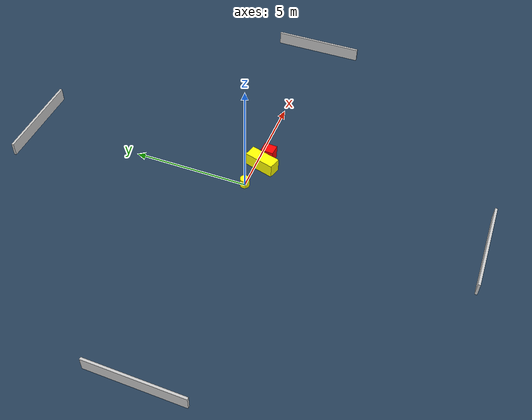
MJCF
<?xml version="1.0" ?>
<mujoco model="generated_environment">
  <option timestep="0.01" integrator="RK4" cone="elliptic"/>
  <default>
    <geom density="1"/>
  </default>
  <asset>
    <texture builtin="gradient" height="3072" name="skybox" rgb1="0.3 0.5 0.7" rgb2="0 0 0" type="skybox" width="512"/>
    <texture builtin="checker" height="300" name="groundplane" rgb1="0.2 0.3 0.4" rgb2="0.1 0.2 0.3" type="2d" width="300"/>
    <material name="groundplane" reflectance="0.2" texrepeat="5 5" texture="groundplane"/>
  </asset>
  <worldbody>
    <light dir="0 0 -1" directional="true" pos="0 0 1.5"/>
    <geom condim="3" friction="0.5 0.005 0.001" material="groundplane" name="floor" pos="0 0 0" size="0 0 0.05" type="plane"/>
    <body name="walls">
      <geom name="wall_1" condim="4" pos="-10.0 0.0 0.3" rgba="0.800000011920929 0.800000011920929 0.800000011920929 1.0" size="0.05 2.0 0.3" type="box"/>
      <geom name="wall_2" condim="4" pos="10.0 0.0 0.3" rgba="0.800000011920929 0.800000011920929 0.800000011920929 1.0" size="0.05 2.0 0.3" type="box"/>
      <geom name="wall_3" condim="4" pos="0.0 -10.0 0.3" rgba="0.800000011920929 0.800000011920929 0.800000011920929 1.0" size="2.0 0.05 0.3" type="box"/>
      <geom name="wall_4" condim="4" pos="0.0 10.0 0.3" rgba="0.800000011920929 0.800000011920929 0.800000011920929 1.0" size="2.0 0.05 0.3" type="box"/>
    </body>
    <body name="robot">
      <joint name="joint_x" type="slide" pos="0 0 0" axis="1 0 0"/>
      <joint name="joint_y" type="slide" pos="0 0 0" axis="0 1 0"/>
      <geom name="robot" type="cylinder" pos="0.0 0.0 0.2" size="0.2 0.2 0.0" mass="5.0" friction="1.0 0.005 0.0001" condim="4" rgba="1.0 1.0 0.0 1.0"/>
    </body>
    <body name="obstacle_1_movable">
      <geom name="obstacle_1_movable" condim="4" pos="1.2849512118454534 -0.2923257568584586 0.3" euler="0 0 344.29438353277726" friction="0.0 0.005 0.001" rgba="1.0 1.0 0.0 1.0" size="0.2721435971494145 0.6620526897393959 0.3" type="box" mass="0.1"/>
      <joint type="free"/>
    </body>
    <body name="obstacle_2_static">
      <geom name="obstacle_2_static" condim="4" pos="1.882820724423118 -0.3749203415437806 0.3" euler="0 0 356.63490496578163" friction="0.0 0.005 0.001" rgba="1.0 0.0 0.0 1.0" size="0.24299049833336067 0.27546783583735135 0.3" type="box"/>
    </body>
  </worldbody>
  <actuator>
    <motor name="actuator_x" joint="joint_x" gear="1" ctrlrange="-1 1"/>
    <motor name="actuator_y" joint="joint_y" gear="1" ctrlrange="-1 1"/>
  </actuator>
</mujoco>
